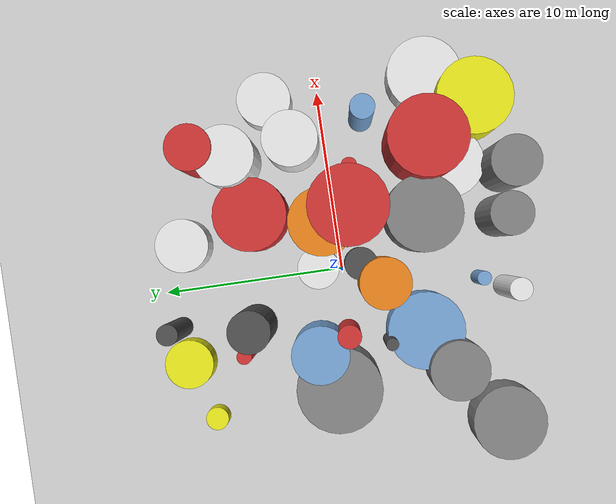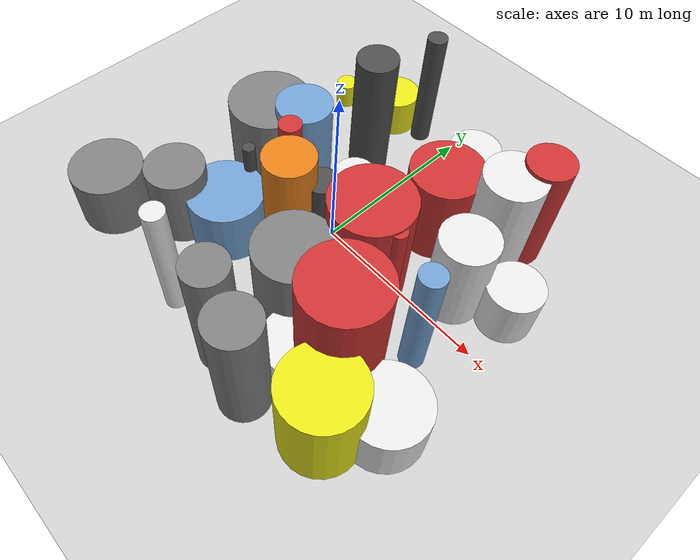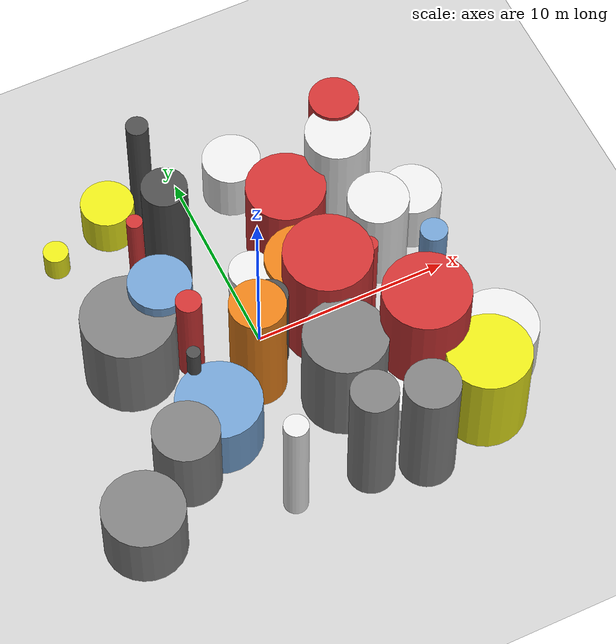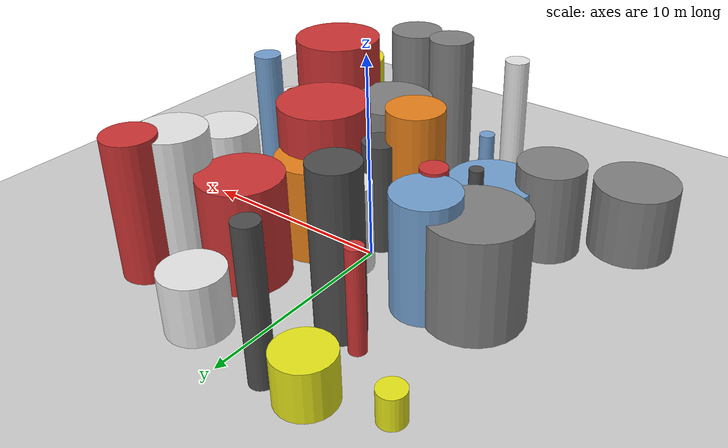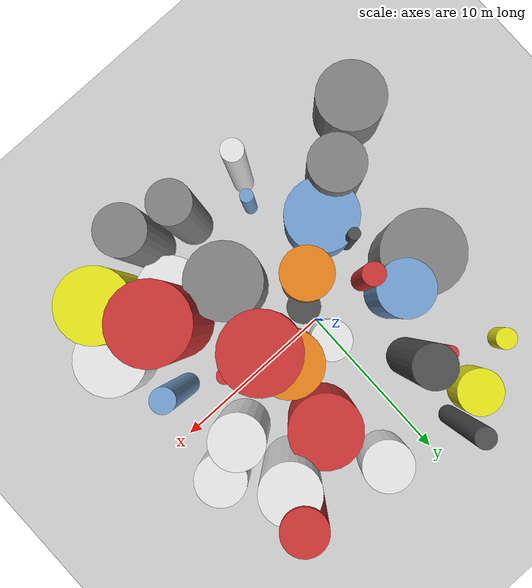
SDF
<?xml version='1.0'?>
<sdf version='1.6'>
  <world name='default'>
    <!-- Sun light -->
    <light name='sun' type='directional'>
      <cast_shadows>1</cast_shadows>
      <pose>0 0 10 0 0 0</pose>
      <diffuse>0.8 0.8 0.8 1</diffuse>
      <specular>0.2 0.2 0.2 1</specular>
      <attenuation>
        <range>1000</range>
        <constant>0.9</constant>
        <linear>0.01</linear>
        <quadratic>0.001</quadratic>
      </attenuation>
      <direction>-0.5 0.1 -0.9</direction>
    </light>

    <!-- Ground plane -->
    <model name='ground_plane'>
      <static>1</static>
      <link name='link'>
        <collision name='collision'>
          <geometry>
            <plane>
              <normal>0 0 1</normal>
              <size>100 100</size>
            </plane>
          </geometry>
          <surface>
            <contact>
              <collide_bitmask>65535</collide_bitmask>
              <ode/>
            </contact>
            <friction>
              <ode>
                <mu>100</mu>
                <mu2>50</mu2>
              </ode>
              <torsional><ode/></torsional>
            </friction>
            <bounce/>
          </surface>
          <max_contacts>10</max_contacts>
        </collision>
        <visual name='visual'>
          <cast_shadows>0</cast_shadows>
          <geometry>
            <plane>
              <normal>0 0 1</normal>
              <size>100 100</size>
            </plane>
          </geometry>
          <material>
            <script>
              <uri>file://media/materials/scripts/gazebo.material</uri>
              <n>Gazebo/Grey</n>
            </script>
          </material>
        </visual>
      </link>
    </model>

    <!-- Environment -->
    <magnetic_field>6e-06 2.3e-05 -4.2e-05</magnetic_field>
    <atmosphere type='adiabatic'/>
    <physics name='default_physics' default='0' type='ode'>
      <gravity>0 0 -9.8</gravity>
      <max_step_size>0.004</max_step_size>
      <real_time_factor>1</real_time_factor>
      <real_time_update_rate>250</real_time_update_rate>
    </physics>
    <scene>
      <ambient>0.4 0.4 0.4 1</ambient>
      <background>0.7 0.7 0.7 1</background>
      <shadows>1</shadows>
    </scene>
    <wind/>
    <spherical_coordinates>
      <surface_model>EARTH_WGS84</surface_model>
      <latitude_deg>0</latitude_deg>
      <longitude_deg>0</longitude_deg>
      <elevation>0</elevation>
      <heading_deg>0</heading_deg>
    </spherical_coordinates>

    <!-- ============ OBSTACLES (35) ============ -->
    <model name='obs_00'>
      <static>1</static>
      <link name='link'>
        <visual name='visual'>
          <geometry>
            <cylinder>
              <radius>1.3841</radius>
              <length>7.0914</length>
            </cylinder>
          </geometry>
          <material>
            <script>
              <n>Gazebo/Orange</n>
              <uri>file://media/materials/scripts/gazebo.material</uri>
            </script>
            <ambient>0.9 0.5 0.1 1</ambient>
          </material>
        </visual>
        <collision name='collision'>
          <geometry>
            <cylinder>
              <radius>1.3841</radius>
              <length>7.0914</length>
            </cylinder>
          </geometry>
          <max_contacts>10</max_contacts>
          <surface>
            <contact><ode/></contact>
            <bounce/>
            <friction>
              <ode><mu>1</mu><mu2>1</mu2></ode>
              <torsional><ode/></torsional>
            </friction>
          </surface>
        </collision>
      </link>
      <pose>-1.0223 -2.1382 3.5457 0 0 2.8680</pose>
    </model>

    <model name='obs_01'>
      <static>1</static>
      <link name='link'>
        <visual name='visual'>
          <geometry>
            <cylinder>
              <radius>2.0670</radius>
              <length>5.4890</length>
            </cylinder>
          </geometry>
          <material>
            <script>
              <n>Gazebo/Yellow</n>
              <uri>file://media/materials/scripts/gazebo.material</uri>
            </script>
            <ambient>0.9 0.9 0.1 1</ambient>
          </material>
        </visual>
        <collision name='collision'>
          <geometry>
            <cylinder>
              <radius>2.0670</radius>
              <length>5.4890</length>
            </cylinder>
          </geometry>
          <max_contacts>10</max_contacts>
          <surface>
            <contact><ode/></contact>
            <bounce/>
            <friction>
              <ode><mu>1</mu><mu2>1</mu2></ode>
              <torsional><ode/></torsional>
            </friction>
          </surface>
        </collision>
      </link>
      <pose>8.0952 -8.2881 2.7445 0 0 0.6775</pose>
    </model>

    <model name='obs_02'>
      <static>1</static>
      <link name='link'>
        <visual name='visual'>
          <geometry>
            <cylinder>
              <radius>1.6348</radius>
              <length>4.4945</length>
            </cylinder>
          </geometry>
          <material>
            <script>
              <n>Gazebo/Grey</n>
              <uri>file://media/materials/scripts/gazebo.material</uri>
            </script>
            <ambient>0.5 0.5 0.5 1</ambient>
          </material>
        </visual>
        <collision name='collision'>
          <geometry>
            <cylinder>
              <radius>1.6348</radius>
              <length>4.4945</length>
            </cylinder>
          </geometry>
          <max_contacts>10</max_contacts>
          <surface>
            <contact><ode/></contact>
            <bounce/>
            <friction>
              <ode><mu>1</mu><mu2>1</mu2></ode>
              <torsional><ode/></torsional>
            </friction>
          </surface>
        </collision>
      </link>
      <pose>-6.3164 -5.5174 2.2473 0 0 2.6252</pose>
    </model>

    <model name='obs_03'>
      <static>1</static>
      <link name='link'>
        <visual name='visual'>
          <geometry>
            <cylinder>
              <radius>2.3088</radius>
              <length>5.0578</length>
            </cylinder>
          </geometry>
          <material>
            <script>
              <n>Gazebo/Grey</n>
              <uri>file://media/materials/scripts/gazebo.material</uri>
            </script>
            <ambient>0.5 0.5 0.5 1</ambient>
          </material>
        </visual>
        <collision name='collision'>
          <geometry>
            <cylinder>
              <radius>2.3088</radius>
              <length>5.0578</length>
            </cylinder>
          </geometry>
          <max_contacts>10</max_contacts>
          <surface>
            <contact><ode/></contact>
            <bounce/>
            <friction>
              <ode><mu>1</mu><mu2>1</mu2></ode>
              <torsional><ode/></torsional>
            </friction>
          </surface>
        </collision>
      </link>
      <pose>-6.3572 1.0285 2.5289 0 0 0.1366</pose>
    </model>

    <model name='obs_04'>
      <static>1</static>
      <link name='link'>
        <visual name='visual'>
          <geometry>
            <cylinder>
              <radius>2.0173</radius>
              <length>3.5008</length>
            </cylinder>
          </geometry>
          <material>
            <script>
              <n>Gazebo/Grey</n>
              <uri>file://media/materials/scripts/gazebo.material</uri>
            </script>
            <ambient>0.5 0.5 0.5 1</ambient>
          </material>
        </visual>
        <collision name='collision'>
          <geometry>
            <cylinder>
              <radius>2.0173</radius>
              <length>3.5008</length>
            </cylinder>
          </geometry>
          <max_contacts>10</max_contacts>
          <surface>
            <contact><ode/></contact>
            <bounce/>
            <friction>
              <ode><mu>1</mu><mu2>1</mu2></ode>
              <torsional><ode/></torsional>
            </friction>
          </surface>
        </collision>
      </link>
      <pose>-9.5857 -7.8692 1.7504 0 0 1.0932</pose>
    </model>

    <model name='obs_05'>
      <static>1</static>
      <link name='link'>
        <visual name='visual'>
          <geometry>
            <cylinder>
              <radius>2.1222</radius>
              <length>3.4452</length>
            </cylinder>
          </geometry>
          <material>
            <script>
              <n>Gazebo/Blue</n>
              <uri>file://media/materials/scripts/gazebo.material</uri>
            </script>
            <ambient>0.447 0.624 0.812 1</ambient>
          </material>
        </visual>
        <collision name='collision'>
          <geometry>
            <cylinder>
              <radius>2.1222</radius>
              <length>3.4452</length>
            </cylinder>
          </geometry>
          <max_contacts>10</max_contacts>
          <surface>
            <contact><ode/></contact>
            <bounce/>
            <friction>
              <ode><mu>1</mu><mu2>1</mu2></ode>
              <torsional><ode/></torsional>
            </friction>
          </surface>
        </collision>
      </link>
      <pose>-3.9983 -4.0943 1.7226 0 0 1.6227</pose>
    </model>

    <model name='obs_06'>
      <static>1</static>
      <link name='link'>
        <visual name='visual'>
          <geometry>
            <cylinder>
              <radius>1.4840</radius>
              <length>3.0288</length>
            </cylinder>
          </geometry>
          <material>
            <script>
              <n>Gazebo/White</n>
              <uri>file://media/materials/scripts/gazebo.material</uri>
            </script>
            <ambient>0.9 0.9 0.9 1</ambient>
          </material>
        </visual>
        <collision name='collision'>
          <geometry>
            <cylinder>
              <radius>1.4840</radius>
              <length>3.0288</length>
            </cylinder>
          </geometry>
          <max_contacts>10</max_contacts>
          <surface>
            <contact><ode/></contact>
            <bounce/>
            <friction>
              <ode><mu>1</mu><mu2>1</mu2></ode>
              <torsional><ode/></torsional>
            </friction>
          </surface>
        </collision>
      </link>
      <pose>9.7584 2.9203 1.5144 0 0 0.2697</pose>
    </model>

    <model name='obs_07'>
      <static>1</static>
      <link name='link'>
        <visual name='visual'>
          <geometry>
            <cylinder>
              <radius>0.4272</radius>
              <length>6.6313</length>
            </cylinder>
          </geometry>
          <material>
            <script>
              <n>Gazebo/Red</n>
              <uri>file://media/materials/scripts/gazebo.material</uri>
            </script>
            <ambient>0.8 0.2 0.2 1</ambient>
          </material>
        </visual>
        <collision name='collision'>
          <geometry>
            <cylinder>
              <radius>0.4272</radius>
              <length>6.6313</length>
            </cylinder>
          </geometry>
          <max_contacts>10</max_contacts>
          <surface>
            <contact><ode/></contact>
            <bounce/>
            <friction>
              <ode><mu>1</mu><mu2>1</mu2></ode>
              <torsional><ode/></torsional>
            </friction>
          </surface>
        </collision>
      </link>
      <pose>5.3153 -1.1284 3.3156 0 0 1.1128</pose>
    </model>

    <model name='obs_08'>
      <static>1</static>
      <link name='link'>
        <visual name='visual'>
          <geometry>
            <cylinder>
              <radius>0.4070</radius>
              <length>5.0814</length>
            </cylinder>
          </geometry>
          <material>
            <script>
              <n>Gazebo/Red</n>
              <uri>file://media/materials/scripts/gazebo.material</uri>
            </script>
            <ambient>0.8 0.2 0.2 1</ambient>
          </material>
        </visual>
        <collision name='collision'>
          <geometry>
            <cylinder>
              <radius>0.4070</radius>
              <length>5.0814</length>
            </cylinder>
          </geometry>
          <max_contacts>10</max_contacts>
          <surface>
            <contact><ode/></contact>
            <bounce/>
            <friction>
              <ode><mu>1</mu><mu2>1</mu2></ode>
              <torsional><ode/></torsional>
            </friction>
          </surface>
        </collision>
      </link>
      <pose>-3.8727 5.8062 2.5407 0 0 0.7989</pose>
    </model>

    <model name='obs_09'>
      <static>1</static>
      <link name='link'>
        <visual name='visual'>
          <geometry>
            <cylinder>
              <radius>0.5632</radius>
              <length>7.3411</length>
            </cylinder>
          </geometry>
          <material>
            <script>
              <n>Gazebo/DarkGrey</n>
              <uri>file://media/materials/scripts/gazebo.material</uri>
            </script>
            <ambient>0.3 0.3 0.3 1</ambient>
          </material>
        </visual>
        <collision name='collision'>
          <geometry>
            <cylinder>
              <radius>0.5632</radius>
              <length>7.3411</length>
            </cylinder>
          </geometry>
          <max_contacts>10</max_contacts>
          <surface>
            <contact><ode/></contact>
            <bounce/>
            <friction>
              <ode><mu>1</mu><mu2>1</mu2></ode>
              <torsional><ode/></torsional>
            </friction>
          </surface>
        </collision>
      </link>
      <pose>-2.0332 9.3928 3.6705 0 0 2.6781</pose>
    </model>

    <model name='obs_10'>
      <static>1</static>
      <link name='link'>
        <visual name='visual'>
          <geometry>
            <cylinder>
              <radius>0.8753</radius>
              <length>5.5246</length>
            </cylinder>
          </geometry>
          <material>
            <script>
              <n>Gazebo/DarkGrey</n>
              <uri>file://media/materials/scripts/gazebo.material</uri>
            </script>
            <ambient>0.3 0.3 0.3 1</ambient>
          </material>
        </visual>
        <collision name='collision'>
          <geometry>
            <cylinder>
              <radius>0.8753</radius>
              <length>5.5246</length>
            </cylinder>
          </geometry>
          <max_contacts>10</max_contacts>
          <surface>
            <contact><ode/></contact>
            <bounce/>
            <friction>
              <ode><mu>1</mu><mu2>1</mu2></ode>
              <torsional><ode/></torsional>
            </friction>
          </surface>
        </collision>
      </link>
      <pose>0.1544 -1.0400 2.7623 0 0 3.1160</pose>
    </model>

    <model name='obs_11'>
      <static>1</static>
      <link name='link'>
        <visual name='visual'>
          <geometry>
            <cylinder>
              <radius>1.5627</radius>
              <length>5.7074</length>
            </cylinder>
          </geometry>
          <material>
            <script>
              <n>Gazebo/Blue</n>
              <uri>file://media/materials/scripts/gazebo.material</uri>
            </script>
            <ambient>0.447 0.624 0.812 1</ambient>
          </material>
        </visual>
        <collision name='collision'>
          <geometry>
            <cylinder>
              <radius>1.5627</radius>
              <length>5.7074</length>
            </cylinder>
          </geometry>
          <max_contacts>10</max_contacts>
          <surface>
            <contact><ode/></contact>
            <bounce/>
            <friction>
              <ode><mu>1</mu><mu2>1</mu2></ode>
              <torsional><ode/></torsional>
            </friction>
          </surface>
        </collision>
      </link>
      <pose>-4.3363 1.7634 2.8537 0 0 0.6856</pose>
    </model>

    <model name='obs_12'>
      <static>1</static>
      <link name='link'>
        <visual name='visual'>
          <geometry>
            <cylinder>
              <radius>2.0513</radius>
              <length>3.2099</length>
            </cylinder>
          </geometry>
          <material>
            <script>
              <n>Gazebo/White</n>
              <uri>file://media/materials/scripts/gazebo.material</uri>
            </script>
            <ambient>0.9 0.9 0.9 1</ambient>
          </material>
        </visual>
        <collision name='collision'>
          <geometry>
            <cylinder>
              <radius>2.0513</radius>
              <length>3.2099</length>
            </cylinder>
          </geometry>
          <max_contacts>10</max_contacts>
          <surface>
            <contact><ode/></contact>
            <bounce/>
            <friction>
              <ode><mu>1</mu><mu2>1</mu2></ode>
              <torsional><ode/></torsional>
            </friction>
          </surface>
        </collision>
      </link>
      <pose>9.8764 -5.9582 1.6050 0 0 2.2519</pose>
    </model>

    <model name='obs_13'>
      <static>1</static>
      <link name='link'>
        <visual name='visual'>
          <geometry>
            <cylinder>
              <radius>1.5197</radius>
              <length>5.4196</length>
            </cylinder>
          </geometry>
          <material>
            <script>
              <n>Gazebo/White</n>
              <uri>file://media/materials/scripts/gazebo.material</uri>
            </script>
            <ambient>0.9 0.9 0.9 1</ambient>
          </material>
        </visual>
        <collision name='collision'>
          <geometry>
            <cylinder>
              <radius>1.5197</radius>
              <length>5.4196</length>
            </cylinder>
          </geometry>
          <max_contacts>10</max_contacts>
          <surface>
            <contact><ode/></contact>
            <bounce/>
            <friction>
              <ode><mu>1</mu><mu2>1</mu2></ode>
              <torsional><ode/></torsional>
            </friction>
          </surface>
        </collision>
      </link>
      <pose>7.2660 1.7641 2.7098 0 0 2.8602</pose>
    </model>

    <model name='obs_14'>
      <static>1</static>
      <link name='link'>
        <visual name='visual'>
          <geometry>
            <cylinder>
              <radius>2.1869</radius>
              <length>6.7645</length>
            </cylinder>
          </geometry>
          <material>
            <script>
              <n>Gazebo/Red</n>
              <uri>file://media/materials/scripts/gazebo.material</uri>
            </script>
            <ambient>0.8 0.2 0.2 1</ambient>
          </material>
        </visual>
        <collision name='collision'>
          <geometry>
            <cylinder>
              <radius>2.1869</radius>
              <length>6.7645</length>
            </cylinder>
          </geometry>
          <max_contacts>10</max_contacts>
          <surface>
            <contact><ode/></contact>
            <bounce/>
            <friction>
              <ode><mu>1</mu><mu2>1</mu2></ode>
              <torsional><ode/></torsional>
            </friction>
          </surface>
        </collision>
      </link>
      <pose>3.2891 -0.7946 3.3822 0 0 1.4246</pose>
    </model>

    <model name='obs_15'>
      <static>1</static>
      <link name='link'>
        <visual name='visual'>
          <geometry>
            <cylinder>
              <radius>2.1487</radius>
              <length>7.9347</length>
            </cylinder>
          </geometry>
          <material>
            <script>
              <n>Gazebo/Red</n>
              <uri>file://media/materials/scripts/gazebo.material</uri>
            </script>
            <ambient>0.8 0.2 0.2 1</ambient>
          </material>
        </visual>
        <collision name='collision'>
          <geometry>
            <cylinder>
              <radius>2.1487</radius>
              <length>7.9347</length>
            </cylinder>
          </geometry>
          <max_contacts>10</max_contacts>
          <surface>
            <contact><ode/></contact>
            <bounce/>
            <friction>
              <ode><mu>1</mu><mu2>1</mu2></ode>
              <torsional><ode/></torsional>
            </friction>
          </surface>
        </collision>
      </link>
      <pose>6.1832 -5.3543 3.9673 0 0 0.0038</pose>
    </model>

    <model name='obs_16'>
      <static>1</static>
      <link name='link'>
        <visual name='visual'>
          <geometry>
            <cylinder>
              <radius>0.6047</radius>
              <length>7.4488</length>
            </cylinder>
          </geometry>
          <material>
            <script>
              <n>Gazebo/White</n>
              <uri>file://media/materials/scripts/gazebo.material</uri>
            </script>
            <ambient>0.9 0.9 0.9 1</ambient>
          </material>
        </visual>
        <collision name='collision'>
          <geometry>
            <cylinder>
              <radius>0.6047</radius>
              <length>7.4488</length>
            </cylinder>
          </geometry>
          <max_contacts>10</max_contacts>
          <surface>
            <contact><ode/></contact>
            <bounce/>
            <friction>
              <ode><mu>1</mu><mu2>1</mu2></ode>
              <torsional><ode/></torsional>
            </friction>
          </surface>
        </collision>
      </link>
      <pose>-2.2978 -8.9722 3.7244 0 0 0.8729</pose>
    </model>

    <model name='obs_17'>
      <static>1</static>
      <link name='link'>
        <visual name='visual'>
          <geometry>
            <cylinder>
              <radius>1.2414</radius>
              <length>6.9580</length>
            </cylinder>
          </geometry>
          <material>
            <script>
              <n>Gazebo/Red</n>
              <uri>file://media/materials/scripts/gazebo.material</uri>
            </script>
            <ambient>0.8 0.2 0.2 1</ambient>
          </material>
        </visual>
        <collision name='collision'>
          <geometry>
            <cylinder>
              <radius>1.2414</radius>
              <length>6.9580</length>
            </cylinder>
          </geometry>
          <max_contacts>10</max_contacts>
          <surface>
            <contact><ode/></contact>
            <bounce/>
            <friction>
              <ode><mu>1</mu><mu2>1</mu2></ode>
              <torsional><ode/></torsional>
            </friction>
          </surface>
        </collision>
      </link>
      <pose>7.4165 7.0232 3.4790 0 0 0.1382</pose>
    </model>

    <model name='obs_18'>
      <static>1</static>
      <link name='link'>
        <visual name='visual'>
          <geometry>
            <cylinder>
              <radius>1.3438</radius>
              <length>2.3502</length>
            </cylinder>
          </geometry>
          <material>
            <script>
              <n>Gazebo/Yellow</n>
              <uri>file://media/materials/scripts/gazebo.material</uri>
            </script>
            <ambient>0.9 0.9 0.1 1</ambient>
          </material>
        </visual>
        <collision name='collision'>
          <geometry>
            <cylinder>
              <radius>1.3438</radius>
              <length>2.3502</length>
            </cylinder>
          </geometry>
          <max_contacts>10</max_contacts>
          <surface>
            <contact><ode/></contact>
            <bounce/>
            <friction>
              <ode><mu>1</mu><mu2>1</mu2></ode>
              <torsional><ode/></torsional>
            </friction>
          </surface>
        </collision>
      </link>
      <pose>-4.0362 9.0780 1.1751 0 0 0.6816</pose>
    </model>

    <model name='obs_19'>
      <static>1</static>
      <link name='link'>
        <visual name='visual'>
          <geometry>
            <cylinder>
              <radius>1.9845</radius>
              <length>5.1367</length>
            </cylinder>
          </geometry>
          <material>
            <script>
              <n>Gazebo/Red</n>
              <uri>file://media/materials/scripts/gazebo.material</uri>
            </script>
            <ambient>0.8 0.2 0.2 1</ambient>
          </material>
        </visual>
        <collision name='collision'>
          <geometry>
            <cylinder>
              <radius>1.9845</radius>
              <length>5.1367</length>
            </cylinder>
          </geometry>
          <max_contacts>10</max_contacts>
          <surface>
            <contact><ode/></contact>
            <bounce/>
            <friction>
              <ode><mu>1</mu><mu2>1</mu2></ode>
              <torsional><ode/></torsional>
            </friction>
          </surface>
        </collision>
      </link>
      <pose>3.5804 4.4581 2.5683 0 0 3.0603</pose>
    </model>

    <model name='obs_20'>
      <static>1</static>
      <link name='link'>
        <visual name='visual'>
          <geometry>
            <cylinder>
              <radius>1.1297</radius>
              <length>7.9784</length>
            </cylinder>
          </geometry>
          <material>
            <script>
              <n>Gazebo/DarkGrey</n>
              <uri>file://media/materials/scripts/gazebo.material</uri>
            </script>
            <ambient>0.3 0.3 0.3 1</ambient>
          </material>
        </visual>
        <collision name='collision'>
          <geometry>
            <cylinder>
              <radius>1.1297</radius>
              <length>7.9784</length>
            </cylinder>
          </geometry>
          <max_contacts>10</max_contacts>
          <surface>
            <contact><ode/></contact>
            <bounce/>
            <friction>
              <ode><mu>1</mu><mu2>1</mu2></ode>
              <torsional><ode/></torsional>
            </friction>
          </surface>
        </collision>
      </link>
      <pose>-2.4702 5.1718 3.9892 0 0 1.2026</pose>
    </model>

    <model name='obs_21'>
      <static>1</static>
      <link name='link'>
        <visual name='visual'>
          <geometry>
            <cylinder>
              <radius>1.4722</radius>
              <length>2.9074</length>
            </cylinder>
          </geometry>
          <material>
            <script>
              <n>Gazebo/White</n>
              <uri>file://media/materials/scripts/gazebo.material</uri>
            </script>
            <ambient>0.9 0.9 0.9 1</ambient>
          </material>
        </visual>
        <collision name='collision'>
          <geometry>
            <cylinder>
              <radius>1.4722</radius>
              <length>2.9074</length>
            </cylinder>
          </geometry>
          <max_contacts>10</max_contacts>
          <surface>
            <contact><ode/></contact>
            <bounce/>
            <friction>
              <ode><mu>1</mu><mu2>1</mu2></ode>
              <torsional><ode/></torsional>
            </friction>
          </surface>
        </collision>
      </link>
      <pose>2.4933 8.5072 1.4537 0 0 1.0220</pose>
    </model>

    <model name='obs_22'>
      <static>1</static>
      <link name='link'>
        <visual name='visual'>
          <geometry>
            <cylinder>
              <radius>0.3907</radius>
              <length>3.7604</length>
            </cylinder>
          </geometry>
          <material>
            <script>
              <n>Gazebo/Blue</n>
              <uri>file://media/materials/scripts/gazebo.material</uri>
            </script>
            <ambient>0.447 0.624 0.812 1</ambient>
          </material>
        </visual>
        <collision name='collision'>
          <geometry>
            <cylinder>
              <radius>0.3907</radius>
              <length>3.7604</length>
            </cylinder>
          </geometry>
          <max_contacts>10</max_contacts>
          <surface>
            <contact><ode/></contact>
            <bounce/>
            <friction>
              <ode><mu>1</mu><mu2>1</mu2></ode>
              <torsional><ode/></torsional>
            </friction>
          </surface>
        </collision>
      </link>
      <pose>-1.6093 -7.5662 1.8802 0 0 1.2399</pose>
    </model>

    <model name='obs_23'>
      <static>1</static>
      <link name='link'>
        <visual name='visual'>
          <geometry>
            <cylinder>
              <radius>0.6629</radius>
              <length>7.4977</length>
            </cylinder>
          </geometry>
          <material>
            <script>
              <n>Gazebo/Blue</n>
              <uri>file://media/materials/scripts/gazebo.material</uri>
            </script>
            <ambient>0.447 0.624 0.812 1</ambient>
          </material>
        </visual>
        <collision name='collision'>
          <geometry>
            <cylinder>
              <radius>0.6629</radius>
              <length>7.4977</length>
            </cylinder>
          </geometry>
          <max_contacts>10</max_contacts>
          <surface>
            <contact><ode/></contact>
            <bounce/>
            <friction>
              <ode><mu>1</mu><mu2>1</mu2></ode>
              <torsional><ode/></torsional>
            </friction>
          </surface>
        </collision>
      </link>
      <pose>8.1602 -2.2297 3.7488 0 0 2.1081</pose>
    </model>

    <model name='obs_24'>
      <static>1</static>
      <link name='link'>
        <visual name='visual'>
          <geometry>
            <cylinder>
              <radius>1.1228</radius>
              <length>4.3631</length>
            </cylinder>
          </geometry>
          <material>
            <script>
              <n>Gazebo/White</n>
              <uri>file://media/materials/scripts/gazebo.material</uri>
            </script>
            <ambient>0.9 0.9 0.9 1</ambient>
          </material>
        </visual>
        <collision name='collision'>
          <geometry>
            <cylinder>
              <radius>1.1228</radius>
              <length>4.3631</length>
            </cylinder>
          </geometry>
          <max_contacts>10</max_contacts>
          <surface>
            <contact><ode/></contact>
            <bounce/>
            <friction>
              <ode><mu>1</mu><mu2>1</mu2></ode>
              <torsional><ode/></torsional>
            </friction>
          </surface>
        </collision>
      </link>
      <pose>0.2223 1.2456 2.1816 0 0 1.7548</pose>
    </model>

    <model name='obs_25'>
      <static>1</static>
      <link name='link'>
        <visual name='visual'>
          <geometry>
            <cylinder>
              <radius>1.8733</radius>
              <length>4.7173</length>
            </cylinder>
          </geometry>
          <material>
            <script>
              <n>Gazebo/Orange</n>
              <uri>file://media/materials/scripts/gazebo.material</uri>
            </script>
            <ambient>0.9 0.5 0.1 1</ambient>
          </material>
        </visual>
        <collision name='collision'>
          <geometry>
            <cylinder>
              <radius>1.8733</radius>
              <length>4.7173</length>
            </cylinder>
          </geometry>
          <max_contacts>10</max_contacts>
          <surface>
            <contact><ode/></contact>
            <bounce/>
            <friction>
              <ode><mu>1</mu><mu2>1</mu2></ode>
              <torsional><ode/></torsional>
            </friction>
          </surface>
        </collision>
      </link>
      <pose>2.6754 0.6855 2.3586 0 0 1.2851</pose>
    </model>

    <model name='obs_26'>
      <static>1</static>
      <link name='link'>
        <visual name='visual'>
          <geometry>
            <cylinder>
              <radius>0.6330</radius>
              <length>1.5344</length>
            </cylinder>
          </geometry>
          <material>
            <script>
              <n>Gazebo/Yellow</n>
              <uri>file://media/materials/scripts/gazebo.material</uri>
            </script>
            <ambient>0.9 0.9 0.1 1</ambient>
          </material>
        </visual>
        <collision name='collision'>
          <geometry>
            <cylinder>
              <radius>0.6330</radius>
              <length>1.5344</length>
            </cylinder>
          </geometry>
          <max_contacts>10</max_contacts>
          <surface>
            <contact><ode/></contact>
            <bounce/>
            <friction>
              <ode><mu>1</mu><mu2>1</mu2></ode>
              <torsional><ode/></torsional>
            </friction>
          </surface>
        </collision>
      </link>
      <pose>-7.3032 8.0579 0.7672 0 0 2.6423</pose>
    </model>

    <model name='obs_27'>
      <static>1</static>
      <link name='link'>
        <visual name='visual'>
          <geometry>
            <cylinder>
              <radius>1.1548</radius>
              <length>7.7421</length>
            </cylinder>
          </geometry>
          <material>
            <script>
              <n>Gazebo/Grey</n>
              <uri>file://media/materials/scripts/gazebo.material</uri>
            </script>
            <ambient>0.5 0.5 0.5 1</ambient>
          </material>
        </visual>
        <collision name='collision'>
          <geometry>
            <cylinder>
              <radius>1.1548</radius>
              <length>7.7421</length>
            </cylinder>
          </geometry>
          <max_contacts>10</max_contacts>
          <surface>
            <contact><ode/></contact>
            <bounce/>
            <friction>
              <ode><mu>1</mu><mu2>1</mu2></ode>
              <torsional><ode/></torsional>
            </friction>
          </surface>
        </collision>
      </link>
      <pose>1.6413 -9.0420 3.8711 0 0 0.2088</pose>
    </model>

    <model name='obs_28'>
      <static>1</static>
      <link name='link'>
        <visual name='visual'>
          <geometry>
            <cylinder>
              <radius>0.3392</radius>
              <length>5.0369</length>
            </cylinder>
          </geometry>
          <material>
            <script>
              <n>Gazebo/DarkGrey</n>
              <uri>file://media/materials/scripts/gazebo.material</uri>
            </script>
            <ambient>0.3 0.3 0.3 1</ambient>
          </material>
        </visual>
        <collision name='collision'>
          <geometry>
            <cylinder>
              <radius>0.3392</radius>
              <length>5.0369</length>
            </cylinder>
          </geometry>
          <max_contacts>10</max_contacts>
          <surface>
            <contact><ode/></contact>
            <bounce/>
            <friction>
              <ode><mu>1</mu><mu2>1</mu2></ode>
              <torsional><ode/></torsional>
            </friction>
          </surface>
        </collision>
      </link>
      <pose>-4.3487 -2.0884 2.5184 0 0 0.0040</pose>
    </model>

    <model name='obs_29'>
      <static>1</static>
      <link name='link'>
        <visual name='visual'>
          <geometry>
            <cylinder>
              <radius>2.0810</radius>
              <length>5.7530</length>
            </cylinder>
          </geometry>
          <material>
            <script>
              <n>Gazebo/Grey</n>
              <uri>file://media/materials/scripts/gazebo.material</uri>
            </script>
            <ambient>0.5 0.5 0.5 1</ambient>
          </material>
        </visual>
        <collision name='collision'>
          <geometry>
            <cylinder>
              <radius>2.0810</radius>
              <length>5.7530</length>
            </cylinder>
          </geometry>
          <max_contacts>10</max_contacts>
          <surface>
            <contact><ode/></contact>
            <bounce/>
            <friction>
              <ode><mu>1</mu><mu2>1</mu2></ode>
              <torsional><ode/></torsional>
            </friction>
          </surface>
        </collision>
      </link>
      <pose>2.3148 -4.7391 2.8765 0 0 1.1566</pose>
    </model>

    <model name='obs_30'>
      <static>1</static>
      <link name='link'>
        <visual name='visual'>
          <geometry>
            <cylinder>
              <radius>0.2825</radius>
              <length>4.2398</length>
            </cylinder>
          </geometry>
          <material>
            <script>
              <n>Gazebo/Yellow</n>
              <uri>file://media/materials/scripts/gazebo.material</uri>
            </script>
            <ambient>0.9 0.9 0.1 1</ambient>
          </material>
        </visual>
        <collision name='collision'>
          <geometry>
            <cylinder>
              <radius>0.2825</radius>
              <length>4.2398</length>
            </cylinder>
          </geometry>
          <max_contacts>10</max_contacts>
          <surface>
            <contact><ode/></contact>
            <bounce/>
            <friction>
              <ode><mu>1</mu><mu2>1</mu2></ode>
              <torsional><ode/></torsional>
            </friction>
          </surface>
        </collision>
      </link>
      <pose>7.8599 -6.0164 2.1199 0 0 0.2847</pose>
    </model>

    <model name='obs_31'>
      <static>1</static>
      <link name='link'>
        <visual name='visual'>
          <geometry>
            <cylinder>
              <radius>0.6415</radius>
              <length>5.8484</length>
            </cylinder>
          </geometry>
          <material>
            <script>
              <n>Gazebo/Red</n>
              <uri>file://media/materials/scripts/gazebo.material</uri>
            </script>
            <ambient>0.8 0.2 0.2 1</ambient>
          </material>
        </visual>
        <collision name='collision'>
          <geometry>
            <cylinder>
              <radius>0.6415</radius>
              <length>5.8484</length>
            </cylinder>
          </geometry>
          <max_contacts>10</max_contacts>
          <surface>
            <contact><ode/></contact>
            <bounce/>
            <friction>
              <ode><mu>1</mu><mu2>1</mu2></ode>
              <torsional><ode/></torsional>
            </friction>
          </surface>
        </collision>
      </link>
      <pose>-3.5782 0.1090 2.9242 0 0 0.0324</pose>
    </model>

    <model name='obs_32'>
      <static>1</static>
      <link name='link'>
        <visual name='visual'>
          <geometry>
            <cylinder>
              <radius>1.9192</radius>
              <length>2.8413</length>
            </cylinder>
          </geometry>
          <material>
            <script>
              <n>Gazebo/White</n>
              <uri>file://media/materials/scripts/gazebo.material</uri>
            </script>
            <ambient>0.9 0.9 0.9 1</ambient>
          </material>
        </visual>
        <collision name='collision'>
          <geometry>
            <cylinder>
              <radius>1.9192</radius>
              <length>2.8413</length>
            </cylinder>
          </geometry>
          <max_contacts>10</max_contacts>
          <surface>
            <contact><ode/></contact>
            <bounce/>
            <friction>
              <ode><mu>1</mu><mu2>1</mu2></ode>
              <torsional><ode/></torsional>
            </friction>
          </surface>
        </collision>
      </link>
      <pose>4.9207 -6.6614 1.4206 0 0 2.8436</pose>
    </model>

    <model name='obs_33'>
      <static>1</static>
      <link name='link'>
        <visual name='visual'>
          <geometry>
            <cylinder>
              <radius>1.6166</radius>
              <length>6.7455</length>
            </cylinder>
          </geometry>
          <material>
            <script>
              <n>Gazebo/White</n>
              <uri>file://media/materials/scripts/gazebo.material</uri>
            </script>
            <ambient>0.9 0.9 0.9 1</ambient>
          </material>
        </visual>
        <collision name='collision'>
          <geometry>
            <cylinder>
              <radius>1.6166</radius>
              <length>6.7455</length>
            </cylinder>
          </geometry>
          <max_contacts>10</max_contacts>
          <surface>
            <contact><ode/></contact>
            <bounce/>
            <friction>
              <ode><mu>1</mu><mu2>1</mu2></ode>
              <torsional><ode/></torsional>
            </friction>
          </surface>
        </collision>
      </link>
      <pose>6.7596 5.2687 3.3727 0 0 0.3648</pose>
    </model>

    <model name='obs_34'>
      <static>1</static>
      <link name='link'>
        <visual name='visual'>
          <geometry>
            <cylinder>
              <radius>1.3509</radius>
              <length>7.4482</length>
            </cylinder>
          </geometry>
          <material>
            <script>
              <n>Gazebo/Grey</n>
              <uri>file://media/materials/scripts/gazebo.material</uri>
            </script>
            <ambient>0.5 0.5 0.5 1</ambient>
          </material>
        </visual>
        <collision name='collision'>
          <geometry>
            <cylinder>
              <radius>1.3509</radius>
              <length>7.4482</length>
            </cylinder>
          </geometry>
          <max_contacts>10</max_contacts>
          <surface>
            <contact><ode/></contact>
            <bounce/>
            <friction>
              <ode><mu>1</mu><mu2>1</mu2></ode>
              <torsional><ode/></torsional>
            </friction>
          </surface>
        </collision>
      </link>
      <pose>4.2973 -9.6924 3.7241 0 0 2.4028</pose>
    </model>

    <!-- GUI camera -->
    <gui fullscreen='0'>
      <camera name='user_camera'>
        <pose>-15 0 18 0 0.85 0.15</pose>
        <view_controller>orbit</view_controller>
        <projection_type>perspective</projection_type>
      </camera>
    </gui>
  </world>
</sdf>
